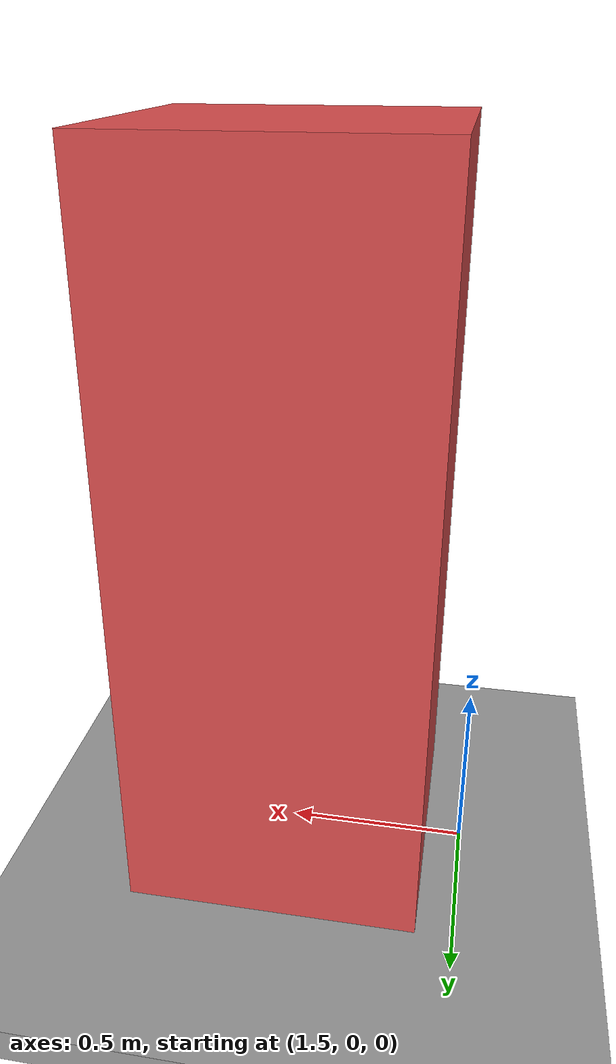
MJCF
<mujoco model="s5_static_pillar">
  <compiler angle="degree"/>
  <option timestep="0.001" gravity="0 0 -9.81"/>
  <visual>
    <global offwidth="160" offheight="90"/>
    <map znear="0.01" zfar="10"/>
  </visual>
  <worldbody>
    <geom name="floor" type="box" size="6 6 0.05" pos="0 0 -0.05"
          rgba="0.6 0.6 0.6 1"/>
    <geom name="pillar" type="box" size="0.4 0.4 1.0" pos="2 0 1"
          rgba="0.85 0.3 0.3 1"/>
    <!-- Camera looks along world +X. Image right is world -Y; up is +Z. -->
    <camera name="s5_camera" pos="0 0 1" xyaxes="0 -1 0 0 0 1" fovy="60"/>
  </worldbody>
</mujoco>
